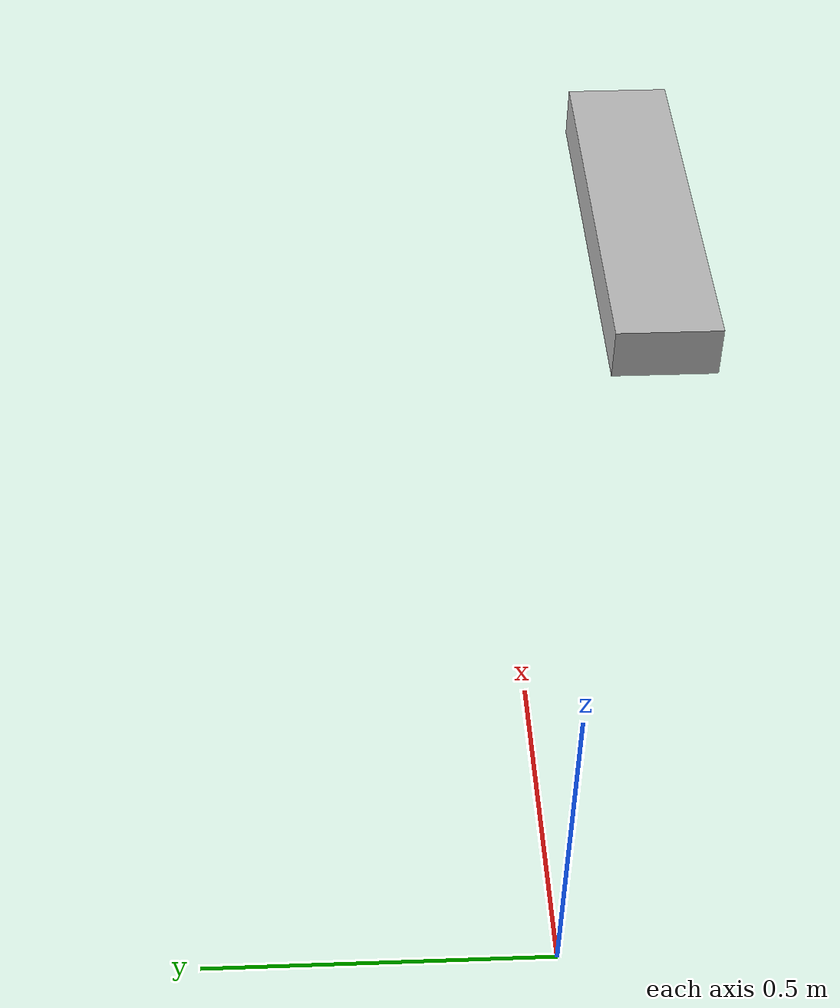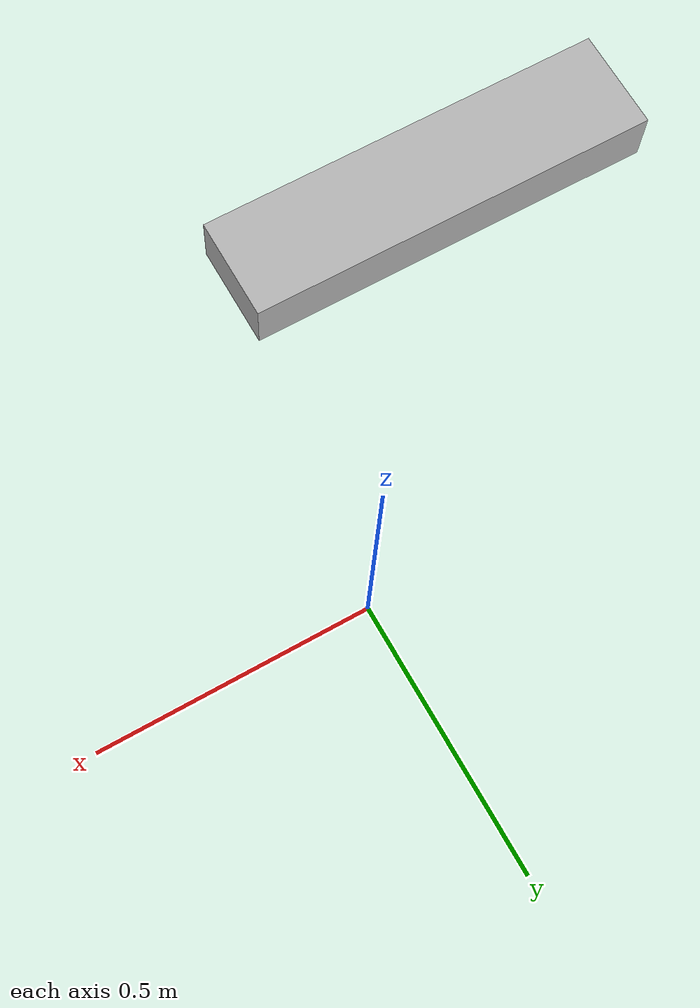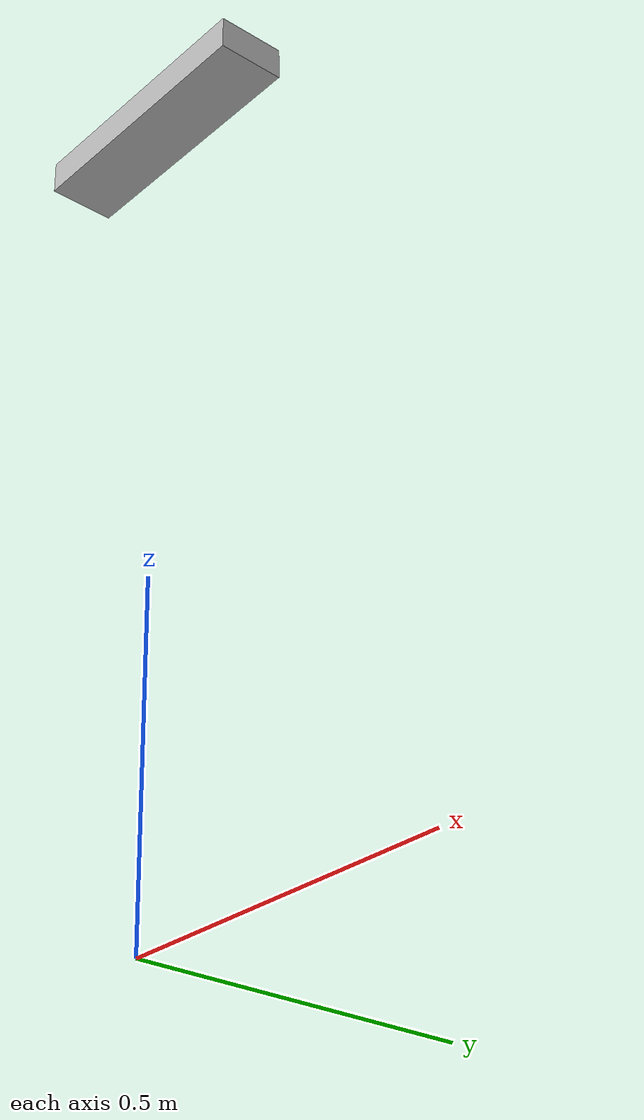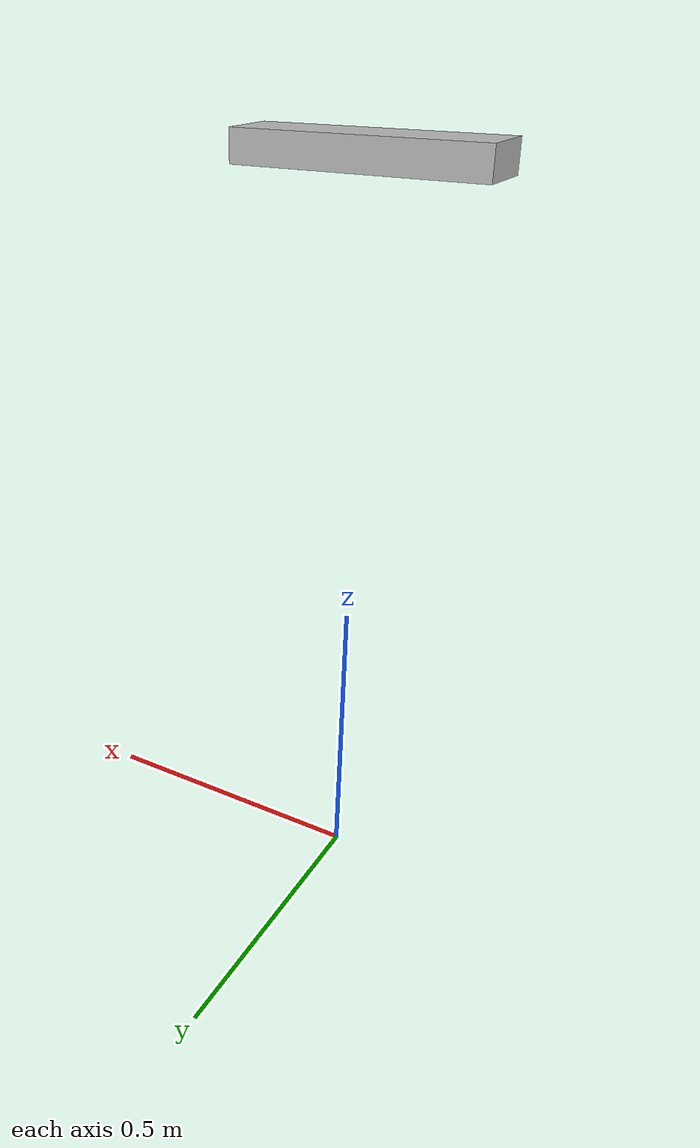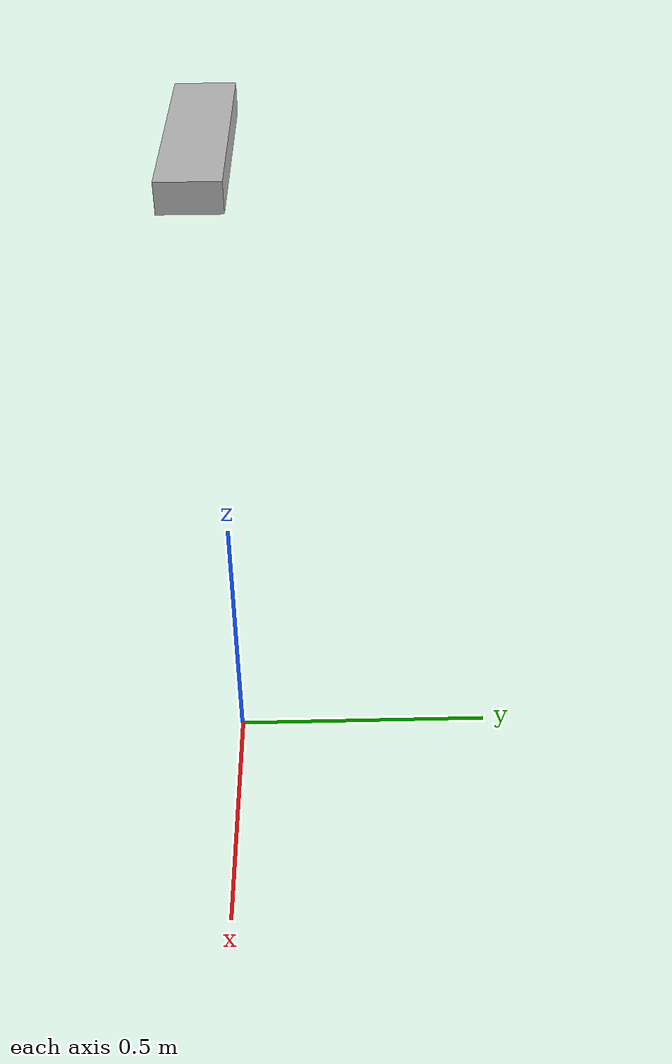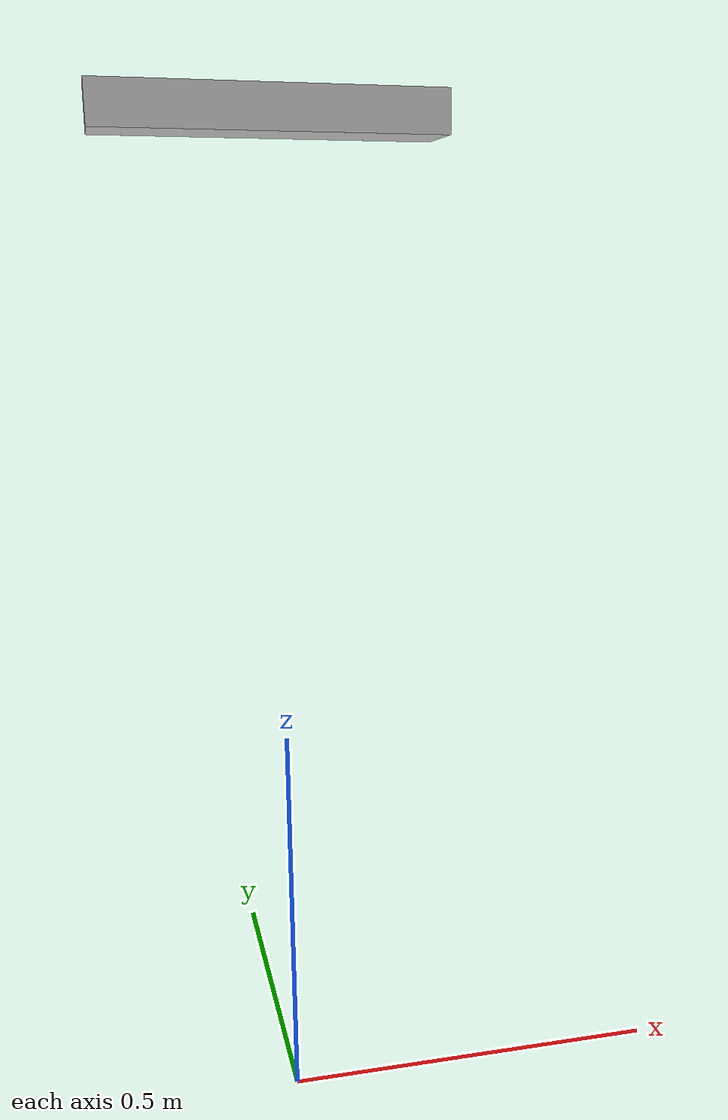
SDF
<sdf version='1.7'>
  <model name='newRail'>
    <link name='base_footprint'>
      <inertial>
        <pose>0 0 0 0 -0 0</pose>
        <mass>50</mass>
        <inertia>
          <ixx>50</ixx>
          <ixy>0</ixy>
          <ixz>0</ixz>
          <iyy>50</iyy>
          <iyz>0</iyz>
          <izz>50</izz>
        </inertia>
      </inertial>
      <collision name='base_footprint_fixed_joint_lump__bumper_collision_collision'>
        <pose>0 0 1.25 0 -0 0</pose>
        <geometry>
          <box>
            <size>0.41 0.11 0.051</size>
          </box>
        </geometry>
      </collision>
      <visual name='base_footprint_visual'>
        <pose>0 0 0 0 -0 0</pose>
        <geometry>
          <box>
            <size>0.001 0.001 0.001</size>
          </box>
        </geometry>
      </visual>
      <visual name='base_footprint_fixed_joint_lump__base_link_visual_1'>
        <pose>0 0 1.25 0 -0 0</pose>
        <geometry>
          <box>
            <size>0.4 0.1 0.05</size>
          </box>
        </geometry>
      </visual>
      <sensor name='main_bumper' type='contact'>
        <contact>
          <collision>bumper_collision_collision</collision>
          <topic>__default_topic__</topic>
        </contact>
        <plugin name='gazebo_ros_bumper_controller' filename='libgazebo_ros_bumper.so'>
          <bumperTopicName>bumper_vals</bumperTopicName>
          <frameName>world</frameName>
        </plugin>
        <pose>0 0 1.25 0 -0 0</pose>
        <selfCollide>1</selfCollide>
        <alwaysOn>1</alwaysOn>
        <updateRate>15.0</updateRate>
        <material>Gazebo/Red</material>
      </sensor>
    </link>
    <static>0</static>
    <plugin name='object_controller' filename='libgazebo_ros_planar_move.so'>
      <commandTopic>cmd_vel</commandTopic>
      <odometryTopic>odom</odometryTopic>
      <odometryFrame>odom</odometryFrame>
      <odometryRate>20.0</odometryRate>
      <robotBaseFrame>base_footprint</robotBaseFrame>
    </plugin>
  </model>
</sdf>
